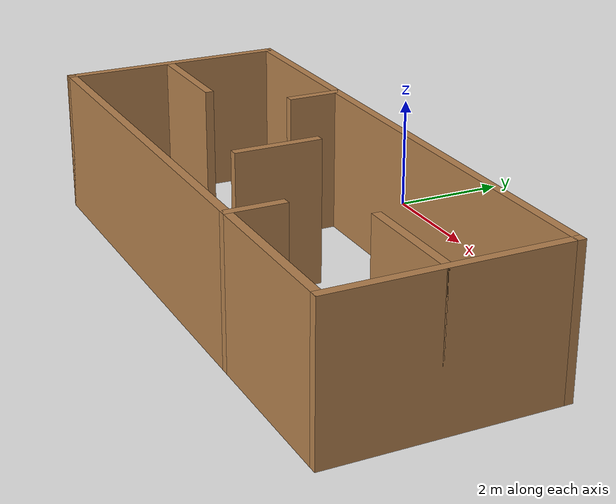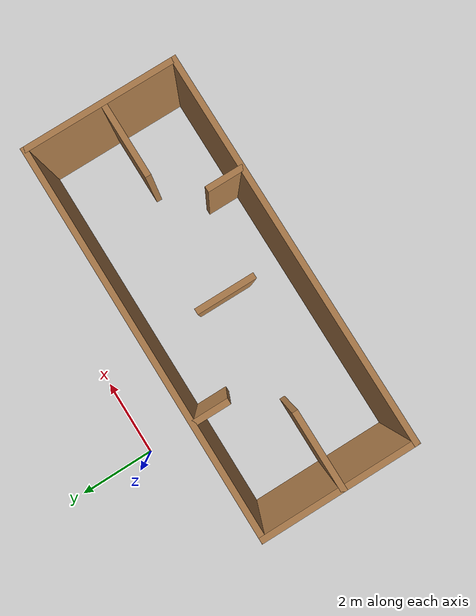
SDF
<?xml version='1.0'?>
<sdf version='1.6'>
  <model name='scene_2'>
    <pose frame=''>2.395 -3.495 0 0 -0 0</pose>
    <link name='Wall_1'>
      <collision name='Wall_1_Collision'>
        <geometry>
          <box>
            <size>10 0.15 2.5</size>
          </box>
        </geometry>
        <pose frame=''>0 0 1.25 0 -0 0</pose>
      </collision>
      <visual name='Wall_1_Visual'>
        <pose frame=''>0 0 1.25 0 -0 0</pose>
        <geometry>
          <box>
            <size>10 0.15 2.5</size>
          </box>
        </geometry>
        <material>
          <script>
            <uri>file://media/materials/scripts/gazebo.material</uri>
            <name>Gazebo/Wood</name>
          </script>
          <ambient>1 1 1 1</ambient>
        </material>
        <meta>
          <layer>0</layer>
        </meta>
      </visual>
      <pose frame=''>-0 -1.925 0 0 -0 0</pose>
    </link>
    <link name='Wall_107'>
      <collision name='Wall_107_Collision'>
        <geometry>
          <box>
            <size>1.5 0.15 2.5</size>
          </box>
        </geometry>
        <pose frame=''>0 0 1.25 0 -0 0</pose>
      </collision>
      <visual name='Wall_107_Visual'>
        <pose frame=''>0 0 1.25 0 -0 0</pose>
        <geometry>
          <box>
            <size>1.5 0.15 2.5</size>
          </box>
        </geometry>
        <material>
          <script>
            <uri>file://media/materials/scripts/gazebo.material</uri>
            <name>Gazebo/Wood</name>
          </script>
          <ambient>1 1 1 1</ambient>
        </material>
        <meta>
          <layer>0</layer>
        </meta>
      </visual>
      <pose frame=''>-0.075 -0.15 0 0 -0 -1.5708</pose>
    </link>
    <link name='Wall_2'>
      <collision name='Wall_2_Collision'>
        <geometry>
          <box>
            <size>4 0.15 2.5</size>
          </box>
        </geometry>
        <pose frame=''>0 0 1.25 0 -0 0</pose>
      </collision>
      <visual name='Wall_2_Visual'>
        <pose frame=''>0 0 1.25 0 -0 0</pose>
        <geometry>
          <box>
            <size>4 0.15 2.5</size>
          </box>
        </geometry>
        <material>
          <script>
            <uri>file://media/materials/scripts/gazebo.material</uri>
            <name>Gazebo/Wood</name>
          </script>
          <ambient>1 1 1 1</ambient>
        </material>
        <meta>
          <layer>0</layer>
        </meta>
      </visual>
      <pose frame=''>4.925 -0 0 0 -0 1.5708</pose>
    </link>
    <link name='Wall_3'>
      <collision name='Wall_3_Collision'>
        <geometry>
          <box>
            <size>10 0.15 2.5</size>
          </box>
        </geometry>
        <pose frame=''>0 0 1.25 0 -0 0</pose>
      </collision>
      <visual name='Wall_3_Visual'>
        <pose frame=''>0 0 1.25 0 -0 0</pose>
        <geometry>
          <box>
            <size>10 0.15 2.5</size>
          </box>
        </geometry>
        <material>
          <script>
            <uri>file://media/materials/scripts/gazebo.material</uri>
            <name>Gazebo/Wood</name>
          </script>
          <ambient>1 1 1 1</ambient>
        </material>
        <meta>
          <layer>0</layer>
        </meta>
      </visual>
      <pose frame=''>-0 1.925 0 0 -0 3.14159</pose>
    </link>
    <link name='Wall_78'>
      <collision name='Wall_78_Collision'>
        <geometry>
          <box>
            <size>2 0.15 2.5</size>
          </box>
        </geometry>
        <pose frame=''>0 0 1.25 0 -0 0</pose>
      </collision>
      <visual name='Wall_78_Visual'>
        <pose frame=''>0 0 1.25 0 -0 0</pose>
        <geometry>
          <box>
            <size>2 0.15 2.5</size>
          </box>
        </geometry>
        <material>
          <script>
            <uri>file://media/materials/scripts/gazebo.material</uri>
            <name>Gazebo/Wood</name>
          </script>
          <ambient>1 1 1 1</ambient>
        </material>
        <meta>
          <layer>0</layer>
        </meta>
      </visual>
      <pose frame=''>-4 -0.075 0 0 -0 0</pose>
    </link>
    <link name='Wall_80'>
      <collision name='Wall_80_Collision'>
        <geometry>
          <box>
            <size>4 0.15 2.5</size>
          </box>
        </geometry>
        <pose frame=''>0 0 1.25 0 -0 0</pose>
      </collision>
      <visual name='Wall_80_Visual'>
        <pose frame=''>0 0 1.25 0 -0 0</pose>
        <geometry>
          <box>
            <size>4 0.15 2.5</size>
          </box>
        </geometry>
        <material>
          <script>
            <uri>file://media/materials/scripts/gazebo.material</uri>
            <name>Gazebo/Wood</name>
          </script>
          <ambient>1 1 1 1</ambient>
        </material>
        <meta>
          <layer>0</layer>
        </meta>
      </visual>
      <pose frame=''>-4.925 -0 0 0 -0 1.5708</pose>
    </link>
    <link name='Wall_83'>
      <collision name='Wall_83_Collision'>
        <geometry>
          <box>
            <size>1 0.15 2.5</size>
          </box>
        </geometry>
        <pose frame=''>0 0 1.25 0 -0 0</pose>
      </collision>
      <visual name='Wall_83_Visual'>
        <pose frame=''>0 0 1.25 0 -0 0</pose>
        <geometry>
          <box>
            <size>1 0.15 2.5</size>
          </box>
        </geometry>
        <material>
          <script>
            <uri>file://media/materials/scripts/gazebo.material</uri>
            <name>Gazebo/Wood</name>
          </script>
          <ambient>1 1 1 1</ambient>
        </material>
        <meta>
          <layer>0</layer>
        </meta>
      </visual>
      <pose frame=''>-2.075 1.5 0 0 -0 -1.5708</pose>
    </link>
    <link name='Wall_86'>
      <collision name='Wall_86_Collision'>
        <geometry>
          <box>
            <size>1 0.15 2.5</size>
          </box>
        </geometry>
        <pose frame=''>0 0 1.25 0 -0 0</pose>
      </collision>
      <visual name='Wall_86_Visual'>
        <pose frame=''>0 0 1.25 0 -0 0</pose>
        <geometry>
          <box>
            <size>1 0.15 2.5</size>
          </box>
        </geometry>
        <material>
          <script>
            <uri>file://media/materials/scripts/gazebo.material</uri>
            <name>Gazebo/Wood</name>
          </script>
          <ambient>1 1 1 1</ambient>
        </material>
        <meta>
          <layer>0</layer>
        </meta>
      </visual>
      <pose frame=''>2.075 -1.5 0 0 -0 1.5708</pose>
    </link>
    <link name='Wall_89'>
      <collision name='Wall_89_Collision'>
        <geometry>
          <box>
            <size>2 0.15 2.5</size>
          </box>
        </geometry>
        <pose frame=''>0 0 1.25 0 -0 0</pose>
      </collision>
      <visual name='Wall_89_Visual'>
        <pose frame=''>0 0 1.25 0 -0 0</pose>
        <geometry>
          <box>
            <size>2 0.15 2.5</size>
          </box>
        </geometry>
        <material>
          <script>
            <uri>file://media/materials/scripts/gazebo.material</uri>
            <name>Gazebo/Wood</name>
          </script>
          <ambient>1 1 1 1</ambient>
        </material>
        <meta>
          <layer>0</layer>
        </meta>
      </visual>
      <pose frame=''>4 -0.075 0 0 -0 3.14159</pose>
    </link>
    <static>1</static>
  </model>
</sdf>
